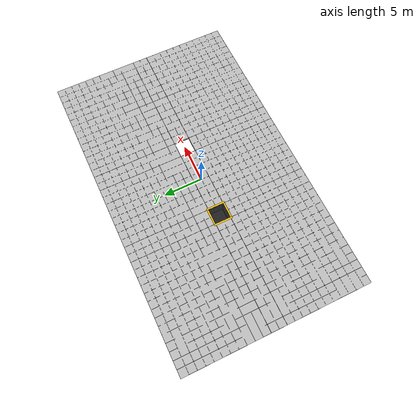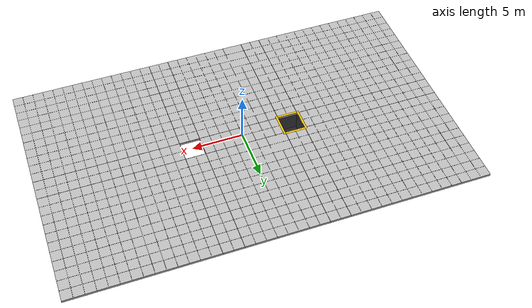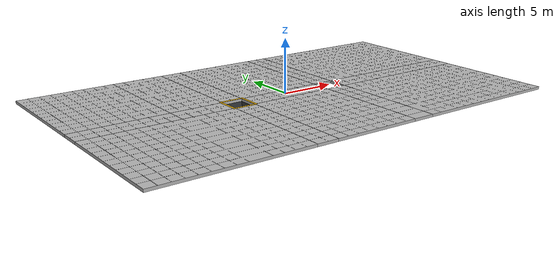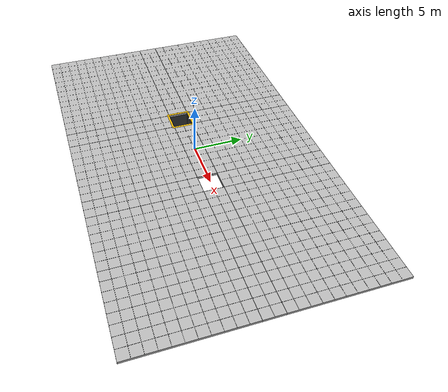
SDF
<sdf version="1.9">
 <world name="factory">
  <model name="unified_factory_floor">
   <static>true</static>
   <link name="body">
    <visual name="floor_0_0_visual">
     <pose>-13 -6.5 -0.12 0 0 0</pose>
     <geometry><mesh><uri>model://factory_scene_assets/meshes/floor_000.dae</uri></mesh></geometry>
    </visual>
    <collision name="floor_0_0_collision">
     <pose>-13 -6.5 -0.12 0 0 0</pose>
     <geometry><box><size>14 11 0.24</size></box></geometry>
    </collision>
    <visual name="floor_0_1_visual">
     <pose>-13 0 -0.12 0 0 0</pose>
     <geometry><mesh><uri>model://factory_scene_assets/meshes/floor_001.dae</uri></mesh></geometry>
    </visual>
    <collision name="floor_0_1_collision">
     <pose>-13 0 -0.12 0 0 0</pose>
     <geometry><box><size>14 2 0.24</size></box></geometry>
    </collision>
    <visual name="floor_0_2_visual">
     <pose>-13 6.5 -0.12 0 0 0</pose>
     <geometry><mesh><uri>model://factory_scene_assets/meshes/floor_000.dae</uri></mesh></geometry>
    </visual>
    <collision name="floor_0_2_collision">
     <pose>-13 6.5 -0.12 0 0 0</pose>
     <geometry><box><size>14 11 0.24</size></box></geometry>
    </collision>
    <visual name="floor_1_0_visual">
     <pose>-5 -6.5 -0.12 0 0 0</pose>
     <geometry><mesh><uri>model://factory_scene_assets/meshes/floor_002.dae</uri></mesh></geometry>
    </visual>
    <collision name="floor_1_0_collision">
     <pose>-5 -6.5 -0.12 0 0 0</pose>
     <geometry><box><size>2 11 0.24</size></box></geometry>
    </collision>
    <visual name="floor_1_2_visual">
     <pose>-5 6.5 -0.12 0 0 0</pose>
     <geometry><mesh><uri>model://factory_scene_assets/meshes/floor_002.dae</uri></mesh></geometry>
    </visual>
    <collision name="floor_1_2_collision">
     <pose>-5 6.5 -0.12 0 0 0</pose>
     <geometry><box><size>2 11 0.24</size></box></geometry>
    </collision>
    <visual name="floor_2_0_visual">
     <pose>0 -6.5 -0.12 0 0 0</pose>
     <geometry><mesh><uri>model://factory_scene_assets/meshes/floor_003.dae</uri></mesh></geometry>
    </visual>
    <collision name="floor_2_0_collision">
     <pose>0 -6.5 -0.12 0 0 0</pose>
     <geometry><box><size>8 11 0.24</size></box></geometry>
    </collision>
    <visual name="floor_2_1_visual">
     <pose>0 0 -0.12 0 0 0</pose>
     <geometry><mesh><uri>model://factory_scene_assets/meshes/floor_004.dae</uri></mesh></geometry>
    </visual>
    <collision name="floor_2_1_collision">
     <pose>0 0 -0.12 0 0 0</pose>
     <geometry><box><size>8 2 0.24</size></box></geometry>
    </collision>
    <visual name="floor_2_2_visual">
     <pose>0 6.5 -0.12 0 0 0</pose>
     <geometry><mesh><uri>model://factory_scene_assets/meshes/floor_003.dae</uri></mesh></geometry>
    </visual>
    <collision name="floor_2_2_collision">
     <pose>0 6.5 -0.12 0 0 0</pose>
     <geometry><box><size>8 11 0.24</size></box></geometry>
    </collision>
    <visual name="floor_3_0_visual">
     <pose>5 -6.5 -0.12 0 0 0</pose>
     <geometry><mesh><uri>model://factory_scene_assets/meshes/floor_002.dae</uri></mesh></geometry>
    </visual>
    <collision name="floor_3_0_collision">
     <pose>5 -6.5 -0.12 0 0 0</pose>
     <geometry><box><size>2 11 0.24</size></box></geometry>
    </collision>
    <visual name="floor_3_2_visual">
     <pose>5 6.5 -0.12 0 0 0</pose>
     <geometry><mesh><uri>model://factory_scene_assets/meshes/floor_002.dae</uri></mesh></geometry>
    </visual>
    <collision name="floor_3_2_collision">
     <pose>5 6.5 -0.12 0 0 0</pose>
     <geometry><box><size>2 11 0.24</size></box></geometry>
    </collision>
    <visual name="floor_4_0_visual">
     <pose>13 -6.5 -0.12 0 0 0</pose>
     <geometry><mesh><uri>model://factory_scene_assets/meshes/floor_000.dae</uri></mesh></geometry>
    </visual>
    <collision name="floor_4_0_collision">
     <pose>13 -6.5 -0.12 0 0 0</pose>
     <geometry><box><size>14 11 0.24</size></box></geometry>
    </collision>
    <visual name="floor_4_1_visual">
     <pose>13 0 -0.12 0 0 0</pose>
     <geometry><mesh><uri>model://factory_scene_assets/meshes/floor_001.dae</uri></mesh></geometry>
    </visual>
    <collision name="floor_4_1_collision">
     <pose>13 0 -0.12 0 0 0</pose>
     <geometry><box><size>14 2 0.24</size></box></geometry>
    </collision>
    <visual name="floor_4_2_visual">
     <pose>13 6.5 -0.12 0 0 0</pose>
     <geometry><mesh><uri>model://factory_scene_assets/meshes/floor_000.dae</uri></mesh></geometry>
    </visual>
    <collision name="floor_4_2_collision">
     <pose>13 6.5 -0.12 0 0 0</pose>
     <geometry><box><size>14 11 0.24</size></box></geometry>
    </collision>
    <visual name="gx_-19_0_visual">
     <pose>-19 0 0.001 0 0 0</pose>
     <geometry><box><size>0.018 24 0.002</size></box></geometry>
     <material><ambient>.24 .25 .26 1</ambient><diffuse>.24 .25 .26 1</diffuse></material>
    </visual>
    <visual name="gx_-18_0_visual">
     <pose>-18 0 0.001 0 0 0</pose>
     <geometry><box><size>0.018 24 0.002</size></box></geometry>
     <material><ambient>.24 .25 .26 1</ambient><diffuse>.24 .25 .26 1</diffuse></material>
    </visual>
    <visual name="gx_-17_0_visual">
     <pose>-17 0 0.001 0 0 0</pose>
     <geometry><box><size>0.018 24 0.002</size></box></geometry>
     <material><ambient>.24 .25 .26 1</ambient><diffuse>.24 .25 .26 1</diffuse></material>
    </visual>
    <visual name="gx_-16_0_visual">
     <pose>-16 0 0.001 0 0 0</pose>
     <geometry><box><size>0.018 24 0.002</size></box></geometry>
     <material><ambient>.24 .25 .26 1</ambient><diffuse>.24 .25 .26 1</diffuse></material>
    </visual>
    <visual name="gx_-15_0_visual">
     <pose>-15 0 0.001 0 0 0</pose>
     <geometry><box><size>0.018 24 0.002</size></box></geometry>
     <material><ambient>.24 .25 .26 1</ambient><diffuse>.24 .25 .26 1</diffuse></material>
    </visual>
    <visual name="gx_-14_0_visual">
     <pose>-14 0 0.001 0 0 0</pose>
     <geometry><box><size>0.018 24 0.002</size></box></geometry>
     <material><ambient>.24 .25 .26 1</ambient><diffuse>.24 .25 .26 1</diffuse></material>
    </visual>
    <visual name="gx_-13_0_visual">
     <pose>-13 0 0.001 0 0 0</pose>
     <geometry><box><size>0.018 24 0.002</size></box></geometry>
     <material><ambient>.24 .25 .26 1</ambient><diffuse>.24 .25 .26 1</diffuse></material>
    </visual>
    <visual name="gx_-12_0_visual">
     <pose>-12 0 0.001 0 0 0</pose>
     <geometry><box><size>0.018 24 0.002</size></box></geometry>
     <material><ambient>.24 .25 .26 1</ambient><diffuse>.24 .25 .26 1</diffuse></material>
    </visual>
    <visual name="gx_-11_0_visual">
     <pose>-11 0 0.001 0 0 0</pose>
     <geometry><box><size>0.018 24 0.002</size></box></geometry>
     <material><ambient>.24 .25 .26 1</ambient><diffuse>.24 .25 .26 1</diffuse></material>
    </visual>
    <visual name="gx_-10_0_visual">
     <pose>-10 0 0.001 0 0 0</pose>
     <geometry><box><size>0.018 24 0.002</size></box></geometry>
     <material><ambient>.24 .25 .26 1</ambient><diffuse>.24 .25 .26 1</diffuse></material>
    </visual>
    <visual name="gx_-9_0_visual">
     <pose>-9 0 0.001 0 0 0</pose>
     <geometry><box><size>0.018 24 0.002</size></box></geometry>
     <material><ambient>.24 .25 .26 1</ambient><diffuse>.24 .25 .26 1</diffuse></material>
    </visual>
    <visual name="gx_-8_0_visual">
     <pose>-8 0 0.001 0 0 0</pose>
     <geometry><box><size>0.018 24 0.002</size></box></geometry>
     <material><ambient>.24 .25 .26 1</ambient><diffuse>.24 .25 .26 1</diffuse></material>
    </visual>
    <visual name="gx_-7_0_visual">
     <pose>-7 0 0.001 0 0 0</pose>
     <geometry><box><size>0.018 24 0.002</size></box></geometry>
     <material><ambient>.24 .25 .26 1</ambient><diffuse>.24 .25 .26 1</diffuse></material>
    </visual>
    <visual name="gx_-6_0_visual">
     <pose>-6 0 0.001 0 0 0</pose>
     <geometry><box><size>0.018 24 0.002</size></box></geometry>
     <material><ambient>.24 .25 .26 1</ambient><diffuse>.24 .25 .26 1</diffuse></material>
    </visual>
    <visual name="gx_-5_0_visual">
     <pose>-5 -6.5 0.001 0 0 0</pose>
     <geometry><box><size>0.018 11 0.002</size></box></geometry>
     <material><ambient>.24 .25 .26 1</ambient><diffuse>.24 .25 .26 1</diffuse></material>
    </visual>
    <visual name="gx_-5_1_visual">
     <pose>-5 6.5 0.001 0 0 0</pose>
     <geometry><box><size>0.018 11 0.002</size></box></geometry>
     <material><ambient>.24 .25 .26 1</ambient><diffuse>.24 .25 .26 1</diffuse></material>
    </visual>
    <visual name="gx_-4_0_visual">
     <pose>-4 0 0.001 0 0 0</pose>
     <geometry><box><size>0.018 24 0.002</size></box></geometry>
     <material><ambient>.24 .25 .26 1</ambient><diffuse>.24 .25 .26 1</diffuse></material>
    </visual>
    <visual name="gx_-3_0_visual">
     <pose>-3 0 0.001 0 0 0</pose>
     <geometry><box><size>0.018 24 0.002</size></box></geometry>
     <material><ambient>.24 .25 .26 1</ambient><diffuse>.24 .25 .26 1</diffuse></material>
    </visual>
    <visual name="gx_-2_0_visual">
     <pose>-2 0 0.001 0 0 0</pose>
     <geometry><box><size>0.018 24 0.002</size></box></geometry>
     <material><ambient>.24 .25 .26 1</ambient><diffuse>.24 .25 .26 1</diffuse></material>
    </visual>
    <visual name="gx_-1_0_visual">
     <pose>-1 0 0.001 0 0 0</pose>
     <geometry><box><size>0.018 24 0.002</size></box></geometry>
     <material><ambient>.24 .25 .26 1</ambient><diffuse>.24 .25 .26 1</diffuse></material>
    </visual>
    <visual name="gx_0_0_visual">
     <pose>0 0 0.001 0 0 0</pose>
     <geometry><box><size>0.018 24 0.002</size></box></geometry>
     <material><ambient>.24 .25 .26 1</ambient><diffuse>.24 .25 .26 1</diffuse></material>
    </visual>
    <visual name="gx_1_0_visual">
     <pose>1 0 0.001 0 0 0</pose>
     <geometry><box><size>0.018 24 0.002</size></box></geometry>
     <material><ambient>.24 .25 .26 1</ambient><diffuse>.24 .25 .26 1</diffuse></material>
    </visual>
    <visual name="gx_2_0_visual">
     <pose>2 0 0.001 0 0 0</pose>
     <geometry><box><size>0.018 24 0.002</size></box></geometry>
     <material><ambient>.24 .25 .26 1</ambient><diffuse>.24 .25 .26 1</diffuse></material>
    </visual>
    <visual name="gx_3_0_visual">
     <pose>3 0 0.001 0 0 0</pose>
     <geometry><box><size>0.018 24 0.002</size></box></geometry>
     <material><ambient>.24 .25 .26 1</ambient><diffuse>.24 .25 .26 1</diffuse></material>
    </visual>
    <visual name="gx_4_0_visual">
     <pose>4 0 0.001 0 0 0</pose>
     <geometry><box><size>0.018 24 0.002</size></box></geometry>
     <material><ambient>.24 .25 .26 1</ambient><diffuse>.24 .25 .26 1</diffuse></material>
    </visual>
    <visual name="gx_5_0_visual">
     <pose>5 -6.5 0.001 0 0 0</pose>
     <geometry><box><size>0.018 11 0.002</size></box></geometry>
     <material><ambient>.24 .25 .26 1</ambient><diffuse>.24 .25 .26 1</diffuse></material>
    </visual>
    <visual name="gx_5_1_visual">
     <pose>5 6.5 0.001 0 0 0</pose>
     <geometry><box><size>0.018 11 0.002</size></box></geometry>
     <material><ambient>.24 .25 .26 1</ambient><diffuse>.24 .25 .26 1</diffuse></material>
    </visual>
    <visual name="gx_6_0_visual">
     <pose>6 0 0.001 0 0 0</pose>
     <geometry><box><size>0.018 24 0.002</size></box></geometry>
     <material><ambient>.24 .25 .26 1</ambient><diffuse>.24 .25 .26 1</diffuse></material>
    </visual>
    <visual name="gx_7_0_visual">
     <pose>7 0 0.001 0 0 0</pose>
     <geometry><box><size>0.018 24 0.002</size></box></geometry>
     <material><ambient>.24 .25 .26 1</ambient><diffuse>.24 .25 .26 1</diffuse></material>
    </visual>
    <visual name="gx_8_0_visual">
     <pose>8 0 0.001 0 0 0</pose>
     <geometry><box><size>0.018 24 0.002</size></box></geometry>
     <material><ambient>.24 .25 .26 1</ambient><diffuse>.24 .25 .26 1</diffuse></material>
    </visual>
    <visual name="gx_9_0_visual">
     <pose>9 0 0.001 0 0 0</pose>
     <geometry><box><size>0.018 24 0.002</size></box></geometry>
     <material><ambient>.24 .25 .26 1</ambient><diffuse>.24 .25 .26 1</diffuse></material>
    </visual>
    <visual name="gx_10_0_visual">
     <pose>10 0 0.001 0 0 0</pose>
     <geometry><box><size>0.018 24 0.002</size></box></geometry>
     <material><ambient>.24 .25 .26 1</ambient><diffuse>.24 .25 .26 1</diffuse></material>
    </visual>
    <visual name="gx_11_0_visual">
     <pose>11 0 0.001 0 0 0</pose>
     <geometry><box><size>0.018 24 0.002</size></box></geometry>
     <material><ambient>.24 .25 .26 1</ambient><diffuse>.24 .25 .26 1</diffuse></material>
    </visual>
    <visual name="gx_12_0_visual">
     <pose>12 0 0.001 0 0 0</pose>
     <geometry><box><size>0.018 24 0.002</size></box></geometry>
     <material><ambient>.24 .25 .26 1</ambient><diffuse>.24 .25 .26 1</diffuse></material>
    </visual>
    <visual name="gx_13_0_visual">
     <pose>13 0 0.001 0 0 0</pose>
     <geometry><box><size>0.018 24 0.002</size></box></geometry>
     <material><ambient>.24 .25 .26 1</ambient><diffuse>.24 .25 .26 1</diffuse></material>
    </visual>
    <visual name="gx_14_0_visual">
     <pose>14 0 0.001 0 0 0</pose>
     <geometry><box><size>0.018 24 0.002</size></box></geometry>
     <material><ambient>.24 .25 .26 1</ambient><diffuse>.24 .25 .26 1</diffuse></material>
    </visual>
    <visual name="gx_15_0_visual">
     <pose>15 0 0.001 0 0 0</pose>
     <geometry><box><size>0.018 24 0.002</size></box></geometry>
     <material><ambient>.24 .25 .26 1</ambient><diffuse>.24 .25 .26 1</diffuse></material>
    </visual>
    <visual name="gx_16_0_visual">
     <pose>16 0 0.001 0 0 0</pose>
     <geometry><box><size>0.018 24 0.002</size></box></geometry>
     <material><ambient>.24 .25 .26 1</ambient><diffuse>.24 .25 .26 1</diffuse></material>
    </visual>
    <visual name="gx_17_0_visual">
     <pose>17 0 0.001 0 0 0</pose>
     <geometry><box><size>0.018 24 0.002</size></box></geometry>
     <material><ambient>.24 .25 .26 1</ambient><diffuse>.24 .25 .26 1</diffuse></material>
    </visual>
    <visual name="gx_18_0_visual">
     <pose>18 0 0.001 0 0 0</pose>
     <geometry><box><size>0.018 24 0.002</size></box></geometry>
     <material><ambient>.24 .25 .26 1</ambient><diffuse>.24 .25 .26 1</diffuse></material>
    </visual>
    <visual name="gx_19_0_visual">
     <pose>19 0 0.001 0 0 0</pose>
     <geometry><box><size>0.018 24 0.002</size></box></geometry>
     <material><ambient>.24 .25 .26 1</ambient><diffuse>.24 .25 .26 1</diffuse></material>
    </visual>
    <visual name="gy_-11_0_visual">
     <pose>0 -11 0.001 0 0 0</pose>
     <geometry><box><size>40 0.018 0.002</size></box></geometry>
     <material><ambient>.24 .25 .26 1</ambient><diffuse>.24 .25 .26 1</diffuse></material>
    </visual>
    <visual name="gy_-10_0_visual">
     <pose>0 -10 0.001 0 0 0</pose>
     <geometry><box><size>40 0.018 0.002</size></box></geometry>
     <material><ambient>.24 .25 .26 1</ambient><diffuse>.24 .25 .26 1</diffuse></material>
    </visual>
    <visual name="gy_-9_0_visual">
     <pose>0 -9 0.001 0 0 0</pose>
     <geometry><box><size>40 0.018 0.002</size></box></geometry>
     <material><ambient>.24 .25 .26 1</ambient><diffuse>.24 .25 .26 1</diffuse></material>
    </visual>
    <visual name="gy_-8_0_visual">
     <pose>0 -8 0.001 0 0 0</pose>
     <geometry><box><size>40 0.018 0.002</size></box></geometry>
     <material><ambient>.24 .25 .26 1</ambient><diffuse>.24 .25 .26 1</diffuse></material>
    </visual>
    <visual name="gy_-7_0_visual">
     <pose>0 -7 0.001 0 0 0</pose>
     <geometry><box><size>40 0.018 0.002</size></box></geometry>
     <material><ambient>.24 .25 .26 1</ambient><diffuse>.24 .25 .26 1</diffuse></material>
    </visual>
    <visual name="gy_-6_0_visual">
     <pose>0 -6 0.001 0 0 0</pose>
     <geometry><box><size>40 0.018 0.002</size></box></geometry>
     <material><ambient>.24 .25 .26 1</ambient><diffuse>.24 .25 .26 1</diffuse></material>
    </visual>
    <visual name="gy_-5_0_visual">
     <pose>0 -5 0.001 0 0 0</pose>
     <geometry><box><size>40 0.018 0.002</size></box></geometry>
     <material><ambient>.24 .25 .26 1</ambient><diffuse>.24 .25 .26 1</diffuse></material>
    </visual>
    <visual name="gy_-4_0_visual">
     <pose>0 -4 0.001 0 0 0</pose>
     <geometry><box><size>40 0.018 0.002</size></box></geometry>
     <material><ambient>.24 .25 .26 1</ambient><diffuse>.24 .25 .26 1</diffuse></material>
    </visual>
    <visual name="gy_-3_0_visual">
     <pose>0 -3 0.001 0 0 0</pose>
     <geometry><box><size>40 0.018 0.002</size></box></geometry>
     <material><ambient>.24 .25 .26 1</ambient><diffuse>.24 .25 .26 1</diffuse></material>
    </visual>
    <visual name="gy_-2_0_visual">
     <pose>0 -2 0.001 0 0 0</pose>
     <geometry><box><size>40 0.018 0.002</size></box></geometry>
     <material><ambient>.24 .25 .26 1</ambient><diffuse>.24 .25 .26 1</diffuse></material>
    </visual>
    <visual name="gy_-1_0_visual">
     <pose>0 -1 0.001 0 0 0</pose>
     <geometry><box><size>40 0.018 0.002</size></box></geometry>
     <material><ambient>.24 .25 .26 1</ambient><diffuse>.24 .25 .26 1</diffuse></material>
    </visual>
    <visual name="gy_0_0_visual">
     <pose>-13 0 0.001 0 0 0</pose>
     <geometry><box><size>14 0.018 0.002</size></box></geometry>
     <material><ambient>.24 .25 .26 1</ambient><diffuse>.24 .25 .26 1</diffuse></material>
    </visual>
    <visual name="gy_0_1_visual">
     <pose>0 0 0.001 0 0 0</pose>
     <geometry><box><size>8 0.018 0.002</size></box></geometry>
     <material><ambient>.24 .25 .26 1</ambient><diffuse>.24 .25 .26 1</diffuse></material>
    </visual>
    <visual name="gy_0_2_visual">
     <pose>13 0 0.001 0 0 0</pose>
     <geometry><box><size>14 0.018 0.002</size></box></geometry>
     <material><ambient>.24 .25 .26 1</ambient><diffuse>.24 .25 .26 1</diffuse></material>
    </visual>
    <visual name="gy_1_0_visual">
     <pose>0 1 0.001 0 0 0</pose>
     <geometry><box><size>40 0.018 0.002</size></box></geometry>
     <material><ambient>.24 .25 .26 1</ambient><diffuse>.24 .25 .26 1</diffuse></material>
    </visual>
    <visual name="gy_2_0_visual">
     <pose>0 2 0.001 0 0 0</pose>
     <geometry><box><size>40 0.018 0.002</size></box></geometry>
     <material><ambient>.24 .25 .26 1</ambient><diffuse>.24 .25 .26 1</diffuse></material>
    </visual>
    <visual name="gy_3_0_visual">
     <pose>0 3 0.001 0 0 0</pose>
     <geometry><box><size>40 0.018 0.002</size></box></geometry>
     <material><ambient>.24 .25 .26 1</ambient><diffuse>.24 .25 .26 1</diffuse></material>
    </visual>
    <visual name="gy_4_0_visual">
     <pose>0 4 0.001 0 0 0</pose>
     <geometry><box><size>40 0.018 0.002</size></box></geometry>
     <material><ambient>.24 .25 .26 1</ambient><diffuse>.24 .25 .26 1</diffuse></material>
    </visual>
    <visual name="gy_5_0_visual">
     <pose>0 5 0.001 0 0 0</pose>
     <geometry><box><size>40 0.018 0.002</size></box></geometry>
     <material><ambient>.24 .25 .26 1</ambient><diffuse>.24 .25 .26 1</diffuse></material>
    </visual>
    <visual name="gy_6_0_visual">
     <pose>0 6 0.001 0 0 0</pose>
     <geometry><box><size>40 0.018 0.002</size></box></geometry>
     <material><ambient>.24 .25 .26 1</ambient><diffuse>.24 .25 .26 1</diffuse></material>
    </visual>
    <visual name="gy_7_0_visual">
     <pose>0 7 0.001 0 0 0</pose>
     <geometry><box><size>40 0.018 0.002</size></box></geometry>
     <material><ambient>.24 .25 .26 1</ambient><diffuse>.24 .25 .26 1</diffuse></material>
    </visual>
    <visual name="gy_8_0_visual">
     <pose>0 8 0.001 0 0 0</pose>
     <geometry><box><size>40 0.018 0.002</size></box></geometry>
     <material><ambient>.24 .25 .26 1</ambient><diffuse>.24 .25 .26 1</diffuse></material>
    </visual>
    <visual name="gy_9_0_visual">
     <pose>0 9 0.001 0 0 0</pose>
     <geometry><box><size>40 0.018 0.002</size></box></geometry>
     <material><ambient>.24 .25 .26 1</ambient><diffuse>.24 .25 .26 1</diffuse></material>
    </visual>
    <visual name="gy_10_0_visual">
     <pose>0 10 0.001 0 0 0</pose>
     <geometry><box><size>40 0.018 0.002</size></box></geometry>
     <material><ambient>.24 .25 .26 1</ambient><diffuse>.24 .25 .26 1</diffuse></material>
    </visual>
    <visual name="gy_11_0_visual">
     <pose>0 11 0.001 0 0 0</pose>
     <geometry><box><size>40 0.018 0.002</size></box></geometry>
     <material><ambient>.24 .25 .26 1</ambient><diffuse>.24 .25 .26 1</diffuse></material>
    </visual>
   </link>
  </model>
  <model name="pit_1">
   <static>true</static>
   <pose>-5 0 0 0 0 0</pose>
   <link name="body">
    <visual name="bottom_visual">
     <pose>0 0 -2.1 0 0 0</pose>
     <geometry><box><size>2.4 2.4 0.2</size></box></geometry>
     <material><ambient>.12 .12 .13 1</ambient><diffuse>.12 .12 .13 1</diffuse></material>
    </visual>
    <collision name="bottom_collision">
     <pose>0 0 -2.1 0 0 0</pose>
     <geometry><box><size>2.4 2.4 0.2</size></box></geometry>
    </collision>
    <visual name="wall0_visual">
     <pose>1.1 0 -1.12 0 0 0</pose>
     <geometry><box><size>0.2 2.4 1.76</size></box></geometry>
     <material><ambient>.22 .23 .24 1</ambient><diffuse>.22 .23 .24 1</diffuse></material>
    </visual>
    <collision name="wall0_collision">
     <pose>1.1 0 -1.12 0 0 0</pose>
     <geometry><box><size>0.2 2.4 1.76</size></box></geometry>
    </collision>
    <visual name="edge0_visual">
     <pose>1.1 0 0.003 0 0 0</pose>
     <geometry><box><size>0.2 2.4 0.006</size></box></geometry>
     <material><ambient>1 .75 .02 1</ambient><diffuse>1 .75 .02 1</diffuse></material>
    </visual>
    <visual name="wall1_visual">
     <pose>-1.1 0 -1.12 0 0 0</pose>
     <geometry><box><size>0.2 2.4 1.76</size></box></geometry>
     <material><ambient>.22 .23 .24 1</ambient><diffuse>.22 .23 .24 1</diffuse></material>
    </visual>
    <collision name="wall1_collision">
     <pose>-1.1 0 -1.12 0 0 0</pose>
     <geometry><box><size>0.2 2.4 1.76</size></box></geometry>
    </collision>
    <visual name="edge1_visual">
     <pose>-1.1 0 0.003 0 0 0</pose>
     <geometry><box><size>0.2 2.4 0.006</size></box></geometry>
     <material><ambient>1 .75 .02 1</ambient><diffuse>1 .75 .02 1</diffuse></material>
    </visual>
    <visual name="wall2_visual">
     <pose>0 1.1 -1.12 0 0 0</pose>
     <geometry><box><size>2 0.2 1.76</size></box></geometry>
     <material><ambient>.22 .23 .24 1</ambient><diffuse>.22 .23 .24 1</diffuse></material>
    </visual>
    <collision name="wall2_collision">
     <pose>0 1.1 -1.12 0 0 0</pose>
     <geometry><box><size>2 0.2 1.76</size></box></geometry>
    </collision>
    <visual name="edge2_visual">
     <pose>0 1.1 0.003 0 0 0</pose>
     <geometry><box><size>2 0.2 0.006</size></box></geometry>
     <material><ambient>1 .75 .02 1</ambient><diffuse>1 .75 .02 1</diffuse></material>
    </visual>
    <visual name="wall3_visual">
     <pose>0 -1.1 -1.12 0 0 0</pose>
     <geometry><box><size>2 0.2 1.76</size></box></geometry>
     <material><ambient>.22 .23 .24 1</ambient><diffuse>.22 .23 .24 1</diffuse></material>
    </visual>
    <collision name="wall3_collision">
     <pose>0 -1.1 -1.12 0 0 0</pose>
     <geometry><box><size>2 0.2 1.76</size></box></geometry>
    </collision>
    <visual name="edge3_visual">
     <pose>0 -1.1 0.003 0 0 0</pose>
     <geometry><box><size>2 0.2 0.006</size></box></geometry>
     <material><ambient>1 .75 .02 1</ambient><diffuse>1 .75 .02 1</diffuse></material>
    </visual>
   </link>
  </model>
 </world>
</sdf>
